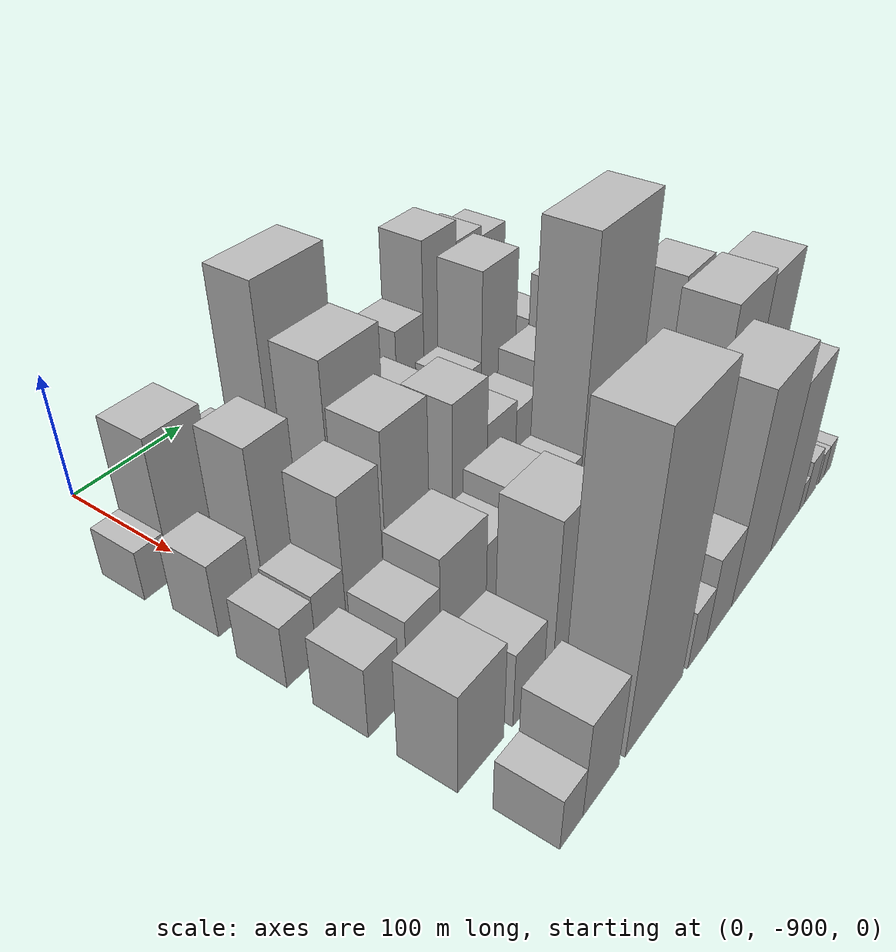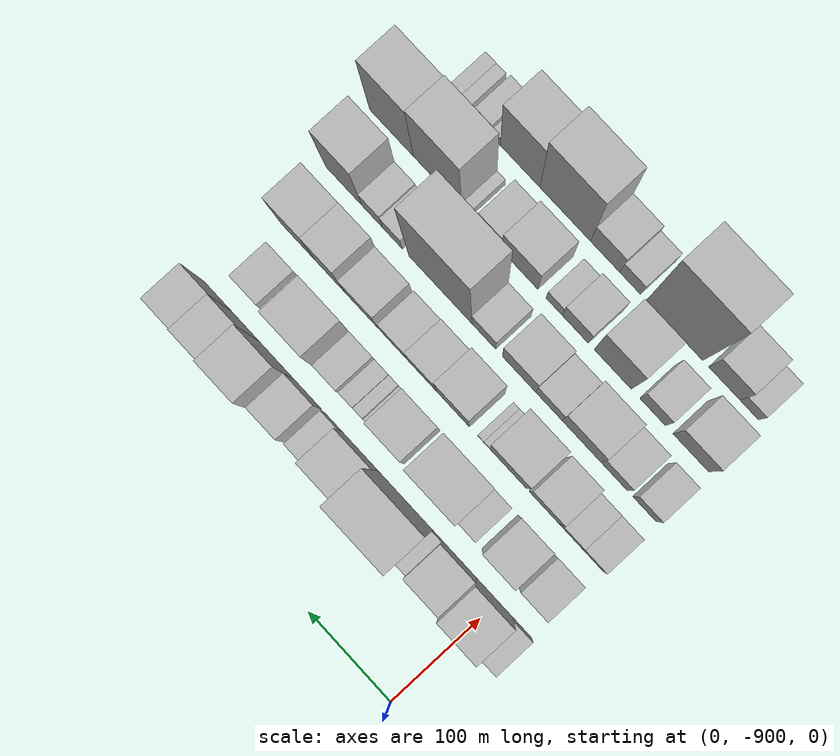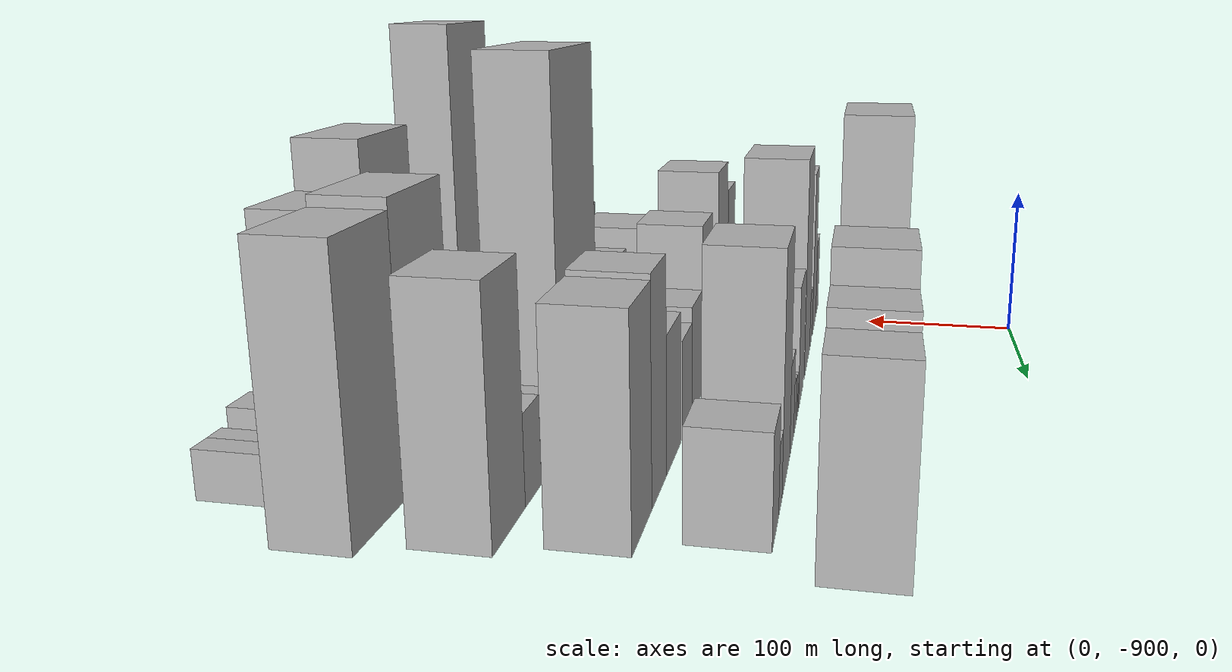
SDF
<sdf version="1.6">
 <world name="default">
  <model name="building_1">
   <static>1</static>
   <pose>100.0000 -928.6633 0 0.000000 0.000000 0.000000</pose>
   <link name="link">
    <pose>0 0 19.50 0 0 0</pose>
    <collision name="collision"><geometry><box><size>40.0000 22.6733 39.0000</size></box></geometry></collision>
    <visual name="visual">
     <cast_shadows>0</cast_shadows>
     <geometry><box><size>40.0000 22.6733 39.0000</size></box></geometry>
     <material>
      <script>
       <uri>model://HANNAS_wall/materials/scripts</uri>
       <uri>model://HANNAS_wall/materials/textures</uri>
       <name>vrc/HANNAS_wall</name>
      </script>
     </material>
    </visual>
   </link>
  </model>
  <model name="building_2">
   <static>1</static>
   <pose>100.0000 -895.1582 0 0.000000 0.000000 0.000000</pose>
   <link name="link">
    <pose>0 0 55.50 0 0 0</pose>
    <collision name="collision"><geometry><box><size>40.0000 44.3370 111.0000</size></box></geometry></collision>
    <visual name="visual">
     <cast_shadows>0</cast_shadows>
     <geometry><box><size>40.0000 44.3370 111.0000</size></box></geometry>
     <material>
      <script>
       <uri>model://HANNAS_wall/materials/scripts</uri>
       <uri>model://HANNAS_wall/materials/textures</uri>
       <name>vrc/HANNAS_wall</name>
      </script>
     </material>
    </visual>
   </link>
  </model>
  <model name="building_3">
   <static>1</static>
   <pose>100.0000 -852.6867 0 0.000000 0.000000 0.000000</pose>
   <link name="link">
    <pose>0 0 34.50 0 0 0</pose>
    <collision name="collision"><geometry><box><size>40.0000 40.6060 69.0000</size></box></geometry></collision>
    <visual name="visual">
     <cast_shadows>0</cast_shadows>
     <geometry><box><size>40.0000 40.6060 69.0000</size></box></geometry>
     <material>
      <script>
       <uri>model://HANNAS_wall/materials/scripts</uri>
       <uri>model://HANNAS_wall/materials/textures</uri>
       <name>vrc/HANNAS_wall</name>
      </script>
     </material>
    </visual>
   </link>
  </model>
  <model name="building_4">
   <static>1</static>
   <pose>100.0000 -826.3222 0 0.000000 0.000000 0.000000</pose>
   <link name="link">
    <pose>0 0 13.50 0 0 0</pose>
    <collision name="collision"><geometry><box><size>40.0000 12.1230 27.0000</size></box></geometry></collision>
    <visual name="visual">
     <cast_shadows>0</cast_shadows>
     <geometry><box><size>40.0000 12.1230 27.0000</size></box></geometry>
     <material>
      <script>
       <uri>model://HANNAS_wall/materials/scripts</uri>
       <uri>model://HANNAS_wall/materials/textures</uri>
       <name>vrc/HANNAS_wall</name>
      </script>
     </material>
    </visual>
   </link>
  </model>
  <model name="building_5">
   <static>1</static>
   <pose>100.0000 -786.8183 0 0.000000 0.000000 0.000000</pose>
   <link name="link">
    <pose>0 0 85.50 0 0 0</pose>
    <collision name="collision"><geometry><box><size>40.0000 66.8846 171.0000</size></box></geometry></collision>
    <visual name="visual">
     <cast_shadows>0</cast_shadows>
     <geometry><box><size>40.0000 66.8846 171.0000</size></box></geometry>
     <material>
      <script>
       <uri>model://HANNAS_wall/materials/scripts</uri>
       <uri>model://HANNAS_wall/materials/textures</uri>
       <name>vrc/HANNAS_wall</name>
      </script>
     </material>
    </visual>
   </link>
  </model>
  <model name="building_6">
   <static>1</static>
   <pose>100.0000 -731.4493 0 0.000000 0.000000 0.000000</pose>
   <link name="link">
    <pose>0 0 37.50 0 0 0</pose>
    <collision name="collision"><geometry><box><size>40.0000 43.8536 75.0000</size></box></geometry></collision>
    <visual name="visual">
     <cast_shadows>0</cast_shadows>
     <geometry><box><size>40.0000 43.8536 75.0000</size></box></geometry>
     <material>
      <script>
       <uri>model://HANNAS_wall/materials/scripts</uri>
       <uri>model://HANNAS_wall/materials/textures</uri>
       <name>vrc/HANNAS_wall</name>
      </script>
     </material>
    </visual>
   </link>
  </model>
  <model name="building_7">
   <static>1</static>
   <pose>100.0000 -698.7344 0 0.000000 0.000000 0.000000</pose>
   <link name="link">
    <pose>0 0 18.00 0 0 0</pose>
    <collision name="collision"><geometry><box><size>40.0000 21.5762 36.0000</size></box></geometry></collision>
    <visual name="visual">
     <cast_shadows>0</cast_shadows>
     <geometry><box><size>40.0000 21.5762 36.0000</size></box></geometry>
     <material>
      <script>
       <uri>model://HANNAS_wall/materials/scripts</uri>
       <uri>model://HANNAS_wall/materials/textures</uri>
       <name>vrc/HANNAS_wall</name>
      </script>
     </material>
    </visual>
   </link>
  </model>
  <model name="building_8">
   <static>1</static>
   <pose>100.0000 -667.6218 0 0.000000 0.000000 0.000000</pose>
   <link name="link">
    <pose>0 0 34.50 0 0 0</pose>
    <collision name="collision"><geometry><box><size>40.0000 34.6488 69.0000</size></box></geometry></collision>
    <visual name="visual">
     <cast_shadows>0</cast_shadows>
     <geometry><box><size>40.0000 34.6488 69.0000</size></box></geometry>
     <material>
      <script>
       <uri>model://HANNAS_wall/materials/scripts</uri>
       <uri>model://HANNAS_wall/materials/textures</uri>
       <name>vrc/HANNAS_wall</name>
      </script>
     </material>
    </visual>
   </link>
  </model>
  <model name="building_9">
   <static>1</static>
   <pose>100.0000 -628.5737 0 0.000000 0.000000 0.000000</pose>
   <link name="link">
    <pose>0 0 64.50 0 0 0</pose>
    <collision name="collision"><geometry><box><size>40.0000 43.4475 129.0000</size></box></geometry></collision>
    <visual name="visual">
     <cast_shadows>0</cast_shadows>
     <geometry><box><size>40.0000 43.4475 129.0000</size></box></geometry>
     <material>
      <script>
       <uri>model://HANNAS_wall/materials/scripts</uri>
       <uri>model://HANNAS_wall/materials/textures</uri>
       <name>vrc/HANNAS_wall</name>
      </script>
     </material>
    </visual>
   </link>
  </model>
  <model name="building_10">
   <static>1</static>
   <pose>100.0000 -589.6463 0 0.000000 0.000000 0.000000</pose>
   <link name="link">
    <pose>0 0 55.50 0 0 0</pose>
    <collision name="collision"><geometry><box><size>40.0000 34.4072 111.0000</size></box></geometry></collision>
    <visual name="visual">
     <cast_shadows>0</cast_shadows>
     <geometry><box><size>40.0000 34.4072 111.0000</size></box></geometry>
     <material>
      <script>
       <uri>model://HANNAS_wall/materials/scripts</uri>
       <uri>model://HANNAS_wall/materials/textures</uri>
       <name>vrc/HANNAS_wall</name>
      </script>
     </material>
    </visual>
   </link>
  </model>
  <model name="building_11">
   <static>1</static>
   <pose>100.0000 -555.4277 0 0.000000 0.000000 0.000000</pose>
   <link name="link">
    <pose>0 0 51.00 0 0 0</pose>
    <collision name="collision"><geometry><box><size>40.0000 34.0300 102.0000</size></box></geometry></collision>
    <visual name="visual">
     <cast_shadows>0</cast_shadows>
     <geometry><box><size>40.0000 34.0300 102.0000</size></box></geometry>
     <material>
      <script>
       <uri>model://HANNAS_wall/materials/scripts</uri>
       <uri>model://HANNAS_wall/materials/textures</uri>
       <name>vrc/HANNAS_wall</name>
      </script>
     </material>
    </visual>
   </link>
  </model>
  <model name="building_56">
   <static>1</static>
   <pose>160.0000 -919.1552 0 0.000000 0.000000 0.000000</pose>
   <link name="link">
    <pose>0 0 28.50 0 0 0</pose>
    <collision name="collision"><geometry><box><size>40.0000 31.6895 57.0000</size></box></geometry></collision>
    <visual name="visual">
     <cast_shadows>0</cast_shadows>
     <geometry><box><size>40.0000 31.6895 57.0000</size></box></geometry>
     <material>
      <script>
       <uri>model://HANNAS_wall/materials/scripts</uri>
       <uri>model://HANNAS_wall/materials/textures</uri>
       <name>vrc/HANNAS_wall</name>
      </script>
     </material>
    </visual>
   </link>
  </model>
  <model name="building_57">
   <static>1</static>
   <pose>160.0000 -877.0877 0 0.000000 0.000000 0.000000</pose>
   <link name="link">
    <pose>0 0 58.50 0 0 0</pose>
    <collision name="collision"><geometry><box><size>40.0000 36.4456 117.0000</size></box></geometry></collision>
    <visual name="visual">
     <cast_shadows>0</cast_shadows>
     <geometry><box><size>40.0000 36.4456 117.0000</size></box></geometry>
     <material>
      <script>
       <uri>model://HANNAS_wall/materials/scripts</uri>
       <uri>model://HANNAS_wall/materials/textures</uri>
       <name>vrc/HANNAS_wall</name>
      </script>
     </material>
    </visual>
   </link>
  </model>
  <model name="building_58">
   <static>1</static>
   <pose>160.0000 -840.0924 0 0.000000 0.000000 0.000000</pose>
   <link name="link">
    <pose>0 0 19.50 0 0 0</pose>
    <collision name="collision"><geometry><box><size>40.0000 21.5450 39.0000</size></box></geometry></collision>
    <visual name="visual">
     <cast_shadows>0</cast_shadows>
     <geometry><box><size>40.0000 21.5450 39.0000</size></box></geometry>
     <material>
      <script>
       <uri>model://HANNAS_wall/materials/scripts</uri>
       <uri>model://HANNAS_wall/materials/textures</uri>
       <name>vrc/HANNAS_wall</name>
      </script>
     </material>
    </visual>
   </link>
  </model>
  <model name="building_59">
   <static>1</static>
   <pose>160.0000 -801.3334 0 0.000000 0.000000 0.000000</pose>
   <link name="link">
    <pose>0 0 70.50 0 0 0</pose>
    <collision name="collision"><geometry><box><size>40.0000 55.9730 141.0000</size></box></geometry></collision>
    <visual name="visual">
     <cast_shadows>0</cast_shadows>
     <geometry><box><size>40.0000 55.9730 141.0000</size></box></geometry>
     <material>
      <script>
       <uri>model://HANNAS_wall/materials/scripts</uri>
       <uri>model://HANNAS_wall/materials/textures</uri>
       <name>vrc/HANNAS_wall</name>
      </script>
     </material>
    </visual>
   </link>
  </model>
  <model name="building_60">
   <static>1</static>
   <pose>160.0000 -743.4794 0 0.000000 0.000000 0.000000</pose>
   <link name="link">
    <pose>0 0 37.50 0 0 0</pose>
    <collision name="collision"><geometry><box><size>40.0000 41.7349 75.0000</size></box></geometry></collision>
    <visual name="visual">
     <cast_shadows>0</cast_shadows>
     <geometry><box><size>40.0000 41.7349 75.0000</size></box></geometry>
     <material>
      <script>
       <uri>model://HANNAS_wall/materials/scripts</uri>
       <uri>model://HANNAS_wall/materials/textures</uri>
       <name>vrc/HANNAS_wall</name>
      </script>
     </material>
    </visual>
   </link>
  </model>
  <model name="building_61">
   <static>1</static>
   <pose>160.0000 -718.9502 0 0.000000 0.000000 0.000000</pose>
   <link name="link">
    <pose>0 0 9.00 0 0 0</pose>
    <collision name="collision"><geometry><box><size>40.0000 7.3236 18.0000</size></box></geometry></collision>
    <visual name="visual">
     <cast_shadows>0</cast_shadows>
     <geometry><box><size>40.0000 7.3236 18.0000</size></box></geometry>
     <material>
      <script>
       <uri>model://HANNAS_wall/materials/scripts</uri>
       <uri>model://HANNAS_wall/materials/textures</uri>
       <name>vrc/HANNAS_wall</name>
      </script>
     </material>
    </visual>
   </link>
  </model>
  <model name="building_62">
   <static>1</static>
   <pose>160.0000 -709.4369 0 0.000000 0.000000 0.000000</pose>
   <link name="link">
    <pose>0 0 13.50 0 0 0</pose>
    <collision name="collision"><geometry><box><size>40.0000 11.7029 27.0000</size></box></geometry></collision>
    <visual name="visual">
     <cast_shadows>0</cast_shadows>
     <geometry><box><size>40.0000 11.7029 27.0000</size></box></geometry>
     <material>
      <script>
       <uri>model://HANNAS_wall/materials/scripts</uri>
       <uri>model://HANNAS_wall/materials/textures</uri>
       <name>vrc/HANNAS_wall</name>
      </script>
     </material>
    </visual>
   </link>
  </model>
  <model name="building_63">
   <static>1</static>
   <pose>160.0000 -695.0232 0 0.000000 0.000000 0.000000</pose>
   <link name="link">
    <pose>0 0 15.00 0 0 0</pose>
    <collision name="collision"><geometry><box><size>40.0000 17.1245 30.0000</size></box></geometry></collision>
    <visual name="visual">
     <cast_shadows>0</cast_shadows>
     <geometry><box><size>40.0000 17.1245 30.0000</size></box></geometry>
     <material>
      <script>
       <uri>model://HANNAS_wall/materials/scripts</uri>
       <uri>model://HANNAS_wall/materials/textures</uri>
       <name>vrc/HANNAS_wall</name>
      </script>
     </material>
    </visual>
   </link>
  </model>
  <model name="building_64">
   <static>1</static>
   <pose>160.0000 -672.4857 0 0.000000 0.000000 0.000000</pose>
   <link name="link">
    <pose>0 0 25.50 0 0 0</pose>
    <collision name="collision"><geometry><box><size>40.0000 27.9505 51.0000</size></box></geometry></collision>
    <visual name="visual">
     <cast_shadows>0</cast_shadows>
     <geometry><box><size>40.0000 27.9505 51.0000</size></box></geometry>
     <material>
      <script>
       <uri>model://HANNAS_wall/materials/scripts</uri>
       <uri>model://HANNAS_wall/materials/textures</uri>
       <name>vrc/HANNAS_wall</name>
      </script>
     </material>
    </visual>
   </link>
  </model>
  <model name="building_65">
   <static>1</static>
   <pose>160.0000 -635.2087 0 0.000000 0.000000 0.000000</pose>
   <link name="link">
    <pose>0 0 63.00 0 0 0</pose>
    <collision name="collision"><geometry><box><size>40.0000 46.6035 126.0000</size></box></geometry></collision>
    <visual name="visual">
     <cast_shadows>0</cast_shadows>
     <geometry><box><size>40.0000 46.6035 126.0000</size></box></geometry>
     <material>
      <script>
       <uri>model://HANNAS_wall/materials/scripts</uri>
       <uri>model://HANNAS_wall/materials/textures</uri>
       <name>vrc/HANNAS_wall</name>
      </script>
     </material>
    </visual>
   </link>
  </model>
  <model name="building_66">
   <static>1</static>
   <pose>160.0000 -602.7980 0 0.000000 0.000000 0.000000</pose>
   <link name="link">
    <pose>0 0 18.00 0 0 0</pose>
    <collision name="collision"><geometry><box><size>40.0000 18.2181 36.0000</size></box></geometry></collision>
    <visual name="visual">
     <cast_shadows>0</cast_shadows>
     <geometry><box><size>40.0000 18.2181 36.0000</size></box></geometry>
     <material>
      <script>
       <uri>model://HANNAS_wall/materials/scripts</uri>
       <uri>model://HANNAS_wall/materials/textures</uri>
       <name>vrc/HANNAS_wall</name>
      </script>
     </material>
    </visual>
   </link>
  </model>
  <model name="building_67">
   <static>1</static>
   <pose>160.0000 -577.5004 0 0.000000 0.000000 0.000000</pose>
   <link name="link">
    <pose>0 0 28.50 0 0 0</pose>
    <collision name="collision"><geometry><box><size>40.0000 32.3771 57.0000</size></box></geometry></collision>
    <visual name="visual">
     <cast_shadows>0</cast_shadows>
     <geometry><box><size>40.0000 32.3771 57.0000</size></box></geometry>
     <material>
      <script>
       <uri>model://HANNAS_wall/materials/scripts</uri>
       <uri>model://HANNAS_wall/materials/textures</uri>
       <name>vrc/HANNAS_wall</name>
      </script>
     </material>
    </visual>
   </link>
  </model>
  <model name="building_113">
   <static>1</static>
   <pose>220.0000 -926.9657 0 0.000000 0.000000 0.000000</pose>
   <link name="link">
    <pose>0 0 24.00 0 0 0</pose>
    <collision name="collision"><geometry><box><size>40.0000 26.0686 48.0000</size></box></geometry></collision>
    <visual name="visual">
     <cast_shadows>0</cast_shadows>
     <geometry><box><size>40.0000 26.0686 48.0000</size></box></geometry>
     <material>
      <script>
       <uri>model://HANNAS_wall/materials/scripts</uri>
       <uri>model://HANNAS_wall/materials/textures</uri>
       <name>vrc/HANNAS_wall</name>
      </script>
     </material>
    </visual>
   </link>
  </model>
  <model name="building_114">
   <static>1</static>
   <pose>220.0000 -900.2919 0 0.000000 0.000000 0.000000</pose>
   <link name="link">
    <pose>0 0 25.50 0 0 0</pose>
    <collision name="collision"><geometry><box><size>40.0000 27.2789 51.0000</size></box></geometry></collision>
    <visual name="visual">
     <cast_shadows>0</cast_shadows>
     <geometry><box><size>40.0000 27.2789 51.0000</size></box></geometry>
     <material>
      <script>
       <uri>model://HANNAS_wall/materials/scripts</uri>
       <uri>model://HANNAS_wall/materials/textures</uri>
       <name>vrc/HANNAS_wall</name>
      </script>
     </material>
    </visual>
   </link>
  </model>
  <model name="building_115">
   <static>1</static>
   <pose>220.0000 -868.7130 0 0.000000 0.000000 0.000000</pose>
   <link name="link">
    <pose>0 0 52.50 0 0 0</pose>
    <collision name="collision"><geometry><box><size>40.0000 35.8790 105.0000</size></box></geometry></collision>
    <visual name="visual">
     <cast_shadows>0</cast_shadows>
     <geometry><box><size>40.0000 35.8790 105.0000</size></box></geometry>
     <material>
      <script>
       <uri>model://HANNAS_wall/materials/scripts</uri>
       <uri>model://HANNAS_wall/materials/textures</uri>
       <name>vrc/HANNAS_wall</name>
      </script>
     </material>
    </visual>
   </link>
  </model>
  <model name="building_116">
   <static>1</static>
   <pose>220.0000 -825.6072 0 0.000000 0.000000 0.000000</pose>
   <link name="link">
    <pose>0 0 63.00 0 0 0</pose>
    <collision name="collision"><geometry><box><size>40.0000 44.3325 126.0000</size></box></geometry></collision>
    <visual name="visual">
     <cast_shadows>0</cast_shadows>
     <geometry><box><size>40.0000 44.3325 126.0000</size></box></geometry>
     <material>
      <script>
       <uri>model://HANNAS_wall/materials/scripts</uri>
       <uri>model://HANNAS_wall/materials/textures</uri>
       <name>vrc/HANNAS_wall</name>
      </script>
     </material>
    </visual>
   </link>
  </model>
  <model name="building_117">
   <static>1</static>
   <pose>220.0000 -799.6809 0 0.000000 0.000000 0.000000</pose>
   <link name="link">
    <pose>0 0 9.00 0 0 0</pose>
    <collision name="collision"><geometry><box><size>40.0000 7.5201 18.0000</size></box></geometry></collision>
    <visual name="visual">
     <cast_shadows>0</cast_shadows>
     <geometry><box><size>40.0000 7.5201 18.0000</size></box></geometry>
     <material>
      <script>
       <uri>model://HANNAS_wall/materials/scripts</uri>
       <uri>model://HANNAS_wall/materials/textures</uri>
       <name>vrc/HANNAS_wall</name>
      </script>
     </material>
    </visual>
   </link>
  </model>
  <model name="building_118">
   <static>1</static>
   <pose>220.0000 -792.2036 0 0.000000 0.000000 0.000000</pose>
   <link name="link">
    <pose>0 0 7.50 0 0 0</pose>
    <collision name="collision"><geometry><box><size>40.0000 7.4347 15.0000</size></box></geometry></collision>
    <visual name="visual">
     <cast_shadows>0</cast_shadows>
     <geometry><box><size>40.0000 7.4347 15.0000</size></box></geometry>
     <material>
      <script>
       <uri>model://HANNAS_wall/materials/scripts</uri>
       <uri>model://HANNAS_wall/materials/textures</uri>
       <name>vrc/HANNAS_wall</name>
      </script>
     </material>
    </visual>
   </link>
  </model>
  <model name="building_119">
   <static>1</static>
   <pose>220.0000 -758.5660 0 0.000000 0.000000 0.000000</pose>
   <link name="link">
    <pose>0 0 52.50 0 0 0</pose>
    <collision name="collision"><geometry><box><size>40.0000 39.8404 105.0000</size></box></geometry></collision>
    <visual name="visual">
     <cast_shadows>0</cast_shadows>
     <geometry><box><size>40.0000 39.8404 105.0000</size></box></geometry>
     <material>
      <script>
       <uri>model://HANNAS_wall/materials/scripts</uri>
       <uri>model://HANNAS_wall/materials/textures</uri>
       <name>vrc/HANNAS_wall</name>
      </script>
     </material>
    </visual>
   </link>
  </model>
  <model name="building_120">
   <static>1</static>
   <pose>220.0000 -720.6980 0 0.000000 0.000000 0.000000</pose>
   <link name="link">
    <pose>0 0 33.00 0 0 0</pose>
    <collision name="collision"><geometry><box><size>40.0000 35.8957 66.0000</size></box></geometry></collision>
    <visual name="visual">
     <cast_shadows>0</cast_shadows>
     <geometry><box><size>40.0000 35.8957 66.0000</size></box></geometry>
     <material>
      <script>
       <uri>model://HANNAS_wall/materials/scripts</uri>
       <uri>model://HANNAS_wall/materials/textures</uri>
       <name>vrc/HANNAS_wall</name>
      </script>
     </material>
    </visual>
   </link>
  </model>
  <model name="building_121">
   <static>1</static>
   <pose>220.0000 -686.6123 0 0.000000 0.000000 0.000000</pose>
   <link name="link">
    <pose>0 0 28.50 0 0 0</pose>
    <collision name="collision"><geometry><box><size>40.0000 32.2755 57.0000</size></box></geometry></collision>
    <visual name="visual">
     <cast_shadows>0</cast_shadows>
     <geometry><box><size>40.0000 32.2755 57.0000</size></box></geometry>
     <material>
      <script>
       <uri>model://HANNAS_wall/materials/scripts</uri>
       <uri>model://HANNAS_wall/materials/textures</uri>
       <name>vrc/HANNAS_wall</name>
      </script>
     </material>
    </visual>
   </link>
  </model>
  <model name="building_122">
   <static>1</static>
   <pose>220.0000 -646.3371 0 0.000000 0.000000 0.000000</pose>
   <link name="link">
    <pose>0 0 37.50 0 0 0</pose>
    <collision name="collision"><geometry><box><size>40.0000 40.2749 75.0000</size></box></geometry></collision>
    <visual name="visual">
     <cast_shadows>0</cast_shadows>
     <geometry><box><size>40.0000 40.2749 75.0000</size></box></geometry>
     <material>
      <script>
       <uri>model://HANNAS_wall/materials/scripts</uri>
       <uri>model://HANNAS_wall/materials/textures</uri>
       <name>vrc/HANNAS_wall</name>
      </script>
     </material>
    </visual>
   </link>
  </model>
  <model name="building_123">
   <static>1</static>
   <pose>220.0000 -607.9706 0 0.000000 0.000000 0.000000</pose>
   <link name="link">
    <pose>0 0 58.50 0 0 0</pose>
    <collision name="collision"><geometry><box><size>40.0000 36.4581 117.0000</size></box></geometry></collision>
    <visual name="visual">
     <cast_shadows>0</cast_shadows>
     <geometry><box><size>40.0000 36.4581 117.0000</size></box></geometry>
     <material>
      <script>
       <uri>model://HANNAS_wall/materials/scripts</uri>
       <uri>model://HANNAS_wall/materials/textures</uri>
       <name>vrc/HANNAS_wall</name>
      </script>
     </material>
    </visual>
   </link>
  </model>
  <model name="building_124">
   <static>1</static>
   <pose>220.0000 -568.2606 0 0.000000 0.000000 0.000000</pose>
   <link name="link">
    <pose>0 0 57.00 0 0 0</pose>
    <collision name="collision"><geometry><box><size>40.0000 42.9619 114.0000</size></box></geometry></collision>
    <visual name="visual">
     <cast_shadows>0</cast_shadows>
     <geometry><box><size>40.0000 42.9619 114.0000</size></box></geometry>
     <material>
      <script>
       <uri>model://HANNAS_wall/materials/scripts</uri>
       <uri>model://HANNAS_wall/materials/textures</uri>
       <name>vrc/HANNAS_wall</name>
      </script>
     </material>
    </visual>
   </link>
  </model>
  <model name="building_172">
   <static>1</static>
   <pose>280.0000 -926.1013 0 0.000000 0.000000 0.000000</pose>
   <link name="link">
    <pose>0 0 27.00 0 0 0</pose>
    <collision name="collision"><geometry><box><size>40.0000 27.7974 54.0000</size></box></geometry></collision>
    <visual name="visual">
     <cast_shadows>0</cast_shadows>
     <geometry><box><size>40.0000 27.7974 54.0000</size></box></geometry>
     <material>
      <script>
       <uri>model://HANNAS_wall/materials/scripts</uri>
       <uri>model://HANNAS_wall/materials/textures</uri>
       <name>vrc/HANNAS_wall</name>
      </script>
     </material>
    </visual>
   </link>
  </model>
  <model name="building_173">
   <static>1</static>
   <pose>280.0000 -889.1991 0 0.000000 0.000000 0.000000</pose>
   <link name="link">
    <pose>0 0 30.00 0 0 0</pose>
    <collision name="collision"><geometry><box><size>40.0000 32.0070 60.0000</size></box></geometry></collision>
    <visual name="visual">
     <cast_shadows>0</cast_shadows>
     <geometry><box><size>40.0000 32.0070 60.0000</size></box></geometry>
     <material>
      <script>
       <uri>model://HANNAS_wall/materials/scripts</uri>
       <uri>model://HANNAS_wall/materials/textures</uri>
       <name>vrc/HANNAS_wall</name>
      </script>
     </material>
    </visual>
   </link>
  </model>
  <model name="building_174">
   <static>1</static>
   <pose>280.0000 -849.8943 0 0.000000 0.000000 0.000000</pose>
   <link name="link">
    <pose>0 0 40.50 0 0 0</pose>
    <collision name="collision"><geometry><box><size>40.0000 46.6026 81.0000</size></box></geometry></collision>
    <visual name="visual">
     <cast_shadows>0</cast_shadows>
     <geometry><box><size>40.0000 46.6026 81.0000</size></box></geometry>
     <material>
      <script>
       <uri>model://HANNAS_wall/materials/scripts</uri>
       <uri>model://HANNAS_wall/materials/textures</uri>
       <name>vrc/HANNAS_wall</name>
      </script>
     </material>
    </visual>
   </link>
  </model>
  <model name="building_175">
   <static>1</static>
   <pose>280.0000 -810.5837 0 0.000000 0.000000 0.000000</pose>
   <link name="link">
    <pose>0 0 28.50 0 0 0</pose>
    <collision name="collision"><geometry><box><size>40.0000 32.0185 57.0000</size></box></geometry></collision>
    <visual name="visual">
     <cast_shadows>0</cast_shadows>
     <geometry><box><size>40.0000 32.0185 57.0000</size></box></geometry>
     <material>
      <script>
       <uri>model://HANNAS_wall/materials/scripts</uri>
       <uri>model://HANNAS_wall/materials/textures</uri>
       <name>vrc/HANNAS_wall</name>
      </script>
     </material>
    </visual>
   </link>
  </model>
  <model name="building_176">
   <static>1</static>
   <pose>280.0000 -774.1640 0 0.000000 0.000000 0.000000</pose>
   <link name="link">
    <pose>0 0 37.50 0 0 0</pose>
    <collision name="collision"><geometry><box><size>40.0000 40.8207 75.0000</size></box></geometry></collision>
    <visual name="visual">
     <cast_shadows>0</cast_shadows>
     <geometry><box><size>40.0000 40.8207 75.0000</size></box></geometry>
     <material>
      <script>
       <uri>model://HANNAS_wall/materials/scripts</uri>
       <uri>model://HANNAS_wall/materials/textures</uri>
       <name>vrc/HANNAS_wall</name>
      </script>
     </material>
    </visual>
   </link>
  </model>
  <model name="building_177">
   <static>1</static>
   <pose>280.0000 -731.1877 0 0.000000 0.000000 0.000000</pose>
   <link name="link">
    <pose>0 0 27.00 0 0 0</pose>
    <collision name="collision"><geometry><box><size>40.0000 29.1320 54.0000</size></box></geometry></collision>
    <visual name="visual">
     <cast_shadows>0</cast_shadows>
     <geometry><box><size>40.0000 29.1320 54.0000</size></box></geometry>
     <material>
      <script>
       <uri>model://HANNAS_wall/materials/scripts</uri>
       <uri>model://HANNAS_wall/materials/textures</uri>
       <name>vrc/HANNAS_wall</name>
      </script>
     </material>
    </visual>
   </link>
  </model>
  <model name="building_178">
   <static>1</static>
   <pose>280.0000 -677.9026 0 0.000000 0.000000 0.000000</pose>
   <link name="link">
    <pose>0 0 106.50 0 0 0</pose>
    <collision name="collision"><geometry><box><size>40.0000 77.4381 213.0000</size></box></geometry></collision>
    <visual name="visual">
     <cast_shadows>0</cast_shadows>
     <geometry><box><size>40.0000 77.4381 213.0000</size></box></geometry>
     <material>
      <script>
       <uri>model://HANNAS_wall/materials/scripts</uri>
       <uri>model://HANNAS_wall/materials/textures</uri>
       <name>vrc/HANNAS_wall</name>
      </script>
     </material>
    </visual>
   </link>
  </model>
  <model name="building_179">
   <static>1</static>
   <pose>280.0000 -618.6739 0 0.000000 0.000000 0.000000</pose>
   <link name="link">
    <pose>0 0 21.00 0 0 0</pose>
    <collision name="collision"><geometry><box><size>40.0000 25.0192 42.0000</size></box></geometry></collision>
    <visual name="visual">
     <cast_shadows>0</cast_shadows>
     <geometry><box><size>40.0000 25.0192 42.0000</size></box></geometry>
     <material>
      <script>
       <uri>model://HANNAS_wall/materials/scripts</uri>
       <uri>model://HANNAS_wall/materials/textures</uri>
       <name>vrc/HANNAS_wall</name>
      </script>
     </material>
    </visual>
   </link>
  </model>
  <model name="building_180">
   <static>1</static>
   <pose>280.0000 -593.6778 0 0.000000 0.000000 0.000000</pose>
   <link name="link">
    <pose>0 0 24.00 0 0 0</pose>
    <collision name="collision"><geometry><box><size>40.0000 24.9732 48.0000</size></box></geometry></collision>
    <visual name="visual">
     <cast_shadows>0</cast_shadows>
     <geometry><box><size>40.0000 24.9732 48.0000</size></box></geometry>
     <material>
      <script>
       <uri>model://HANNAS_wall/materials/scripts</uri>
       <uri>model://HANNAS_wall/materials/textures</uri>
       <name>vrc/HANNAS_wall</name>
      </script>
     </material>
    </visual>
   </link>
  </model>
  <model name="building_181">
   <static>1</static>
   <pose>280.0000 -558.6664 0 0.000000 0.000000 0.000000</pose>
   <link name="link">
    <pose>0 0 63.00 0 0 0</pose>
    <collision name="collision"><geometry><box><size>40.0000 45.0495 126.0000</size></box></geometry></collision>
    <visual name="visual">
     <cast_shadows>0</cast_shadows>
     <geometry><box><size>40.0000 45.0495 126.0000</size></box></geometry>
     <material>
      <script>
       <uri>model://HANNAS_wall/materials/scripts</uri>
       <uri>model://HANNAS_wall/materials/textures</uri>
       <name>vrc/HANNAS_wall</name>
      </script>
     </material>
    </visual>
   </link>
  </model>
  <model name="building_223">
   <static>1</static>
   <pose>340.0000 -918.4983 0 0.000000 0.000000 0.000000</pose>
   <link name="link">
    <pose>0 0 37.50 0 0 0</pose>
    <collision name="collision"><geometry><box><size>40.0000 43.0033 75.0000</size></box></geometry></collision>
    <visual name="visual">
     <cast_shadows>0</cast_shadows>
     <geometry><box><size>40.0000 43.0033 75.0000</size></box></geometry>
     <material>
      <script>
       <uri>model://HANNAS_wall/materials/scripts</uri>
       <uri>model://HANNAS_wall/materials/textures</uri>
       <name>vrc/HANNAS_wall</name>
      </script>
     </material>
    </visual>
   </link>
  </model>
  <model name="building_224">
   <static>1</static>
   <pose>340.0000 -872.4000 0 0.000000 0.000000 0.000000</pose>
   <link name="link">
    <pose>0 0 28.50 0 0 0</pose>
    <collision name="collision"><geometry><box><size>40.0000 31.1934 57.0000</size></box></geometry></collision>
    <visual name="visual">
     <cast_shadows>0</cast_shadows>
     <geometry><box><size>40.0000 31.1934 57.0000</size></box></geometry>
     <material>
      <script>
       <uri>model://HANNAS_wall/materials/scripts</uri>
       <uri>model://HANNAS_wall/materials/textures</uri>
       <name>vrc/HANNAS_wall</name>
      </script>
     </material>
    </visual>
   </link>
  </model>
  <model name="building_225">
   <static>1</static>
   <pose>340.0000 -824.1453 0 0.000000 0.000000 0.000000</pose>
   <link name="link">
    <pose>0 0 60.00 0 0 0</pose>
    <collision name="collision"><geometry><box><size>40.0000 45.3159 120.0000</size></box></geometry></collision>
    <visual name="visual">
     <cast_shadows>0</cast_shadows>
     <geometry><box><size>40.0000 45.3159 120.0000</size></box></geometry>
     <material>
      <script>
       <uri>model://HANNAS_wall/materials/scripts</uri>
       <uri>model://HANNAS_wall/materials/textures</uri>
       <name>vrc/HANNAS_wall</name>
      </script>
     </material>
    </visual>
   </link>
  </model>
  <model name="building_226">
   <static>1</static>
   <pose>340.0000 -778.5512 0 0.000000 0.000000 0.000000</pose>
   <link name="link">
    <pose>0 0 28.50 0 0 0</pose>
    <collision name="collision"><geometry><box><size>40.0000 31.8724 57.0000</size></box></geometry></collision>
    <visual name="visual">
     <cast_shadows>0</cast_shadows>
     <geometry><box><size>40.0000 31.8724 57.0000</size></box></geometry>
     <material>
      <script>
       <uri>model://HANNAS_wall/materials/scripts</uri>
       <uri>model://HANNAS_wall/materials/textures</uri>
       <name>vrc/HANNAS_wall</name>
      </script>
     </material>
    </visual>
   </link>
  </model>
  <model name="building_227">
   <static>1</static>
   <pose>340.0000 -752.7260 0 0.000000 0.000000 0.000000</pose>
   <link name="link">
    <pose>0 0 19.50 0 0 0</pose>
    <collision name="collision"><geometry><box><size>40.0000 19.7779 39.0000</size></box></geometry></collision>
    <visual name="visual">
     <cast_shadows>0</cast_shadows>
     <geometry><box><size>40.0000 19.7779 39.0000</size></box></geometry>
     <material>
      <script>
       <uri>model://HANNAS_wall/materials/scripts</uri>
       <uri>model://HANNAS_wall/materials/textures</uri>
       <name>vrc/HANNAS_wall</name>
      </script>
     </material>
    </visual>
   </link>
  </model>
  <model name="building_228">
   <static>1</static>
   <pose>340.0000 -710.6813 0 0.000000 0.000000 0.000000</pose>
   <link name="link">
    <pose>0 0 39.00 0 0 0</pose>
    <collision name="collision"><geometry><box><size>40.0000 44.3116 78.0000</size></box></geometry></collision>
    <visual name="visual">
     <cast_shadows>0</cast_shadows>
     <geometry><box><size>40.0000 44.3116 78.0000</size></box></geometry>
     <material>
      <script>
       <uri>model://HANNAS_wall/materials/scripts</uri>
       <uri>model://HANNAS_wall/materials/textures</uri>
       <name>vrc/HANNAS_wall</name>
      </script>
     </material>
    </visual>
   </link>
  </model>
  <model name="building_229">
   <static>1</static>
   <pose>340.0000 -674.0462 0 0.000000 0.000000 0.000000</pose>
   <link name="link">
    <pose>0 0 28.50 0 0 0</pose>
    <collision name="collision"><geometry><box><size>40.0000 28.9584 57.0000</size></box></geometry></collision>
    <visual name="visual">
     <cast_shadows>0</cast_shadows>
     <geometry><box><size>40.0000 28.9584 57.0000</size></box></geometry>
     <material>
      <script>
       <uri>model://HANNAS_wall/materials/scripts</uri>
       <uri>model://HANNAS_wall/materials/textures</uri>
       <name>vrc/HANNAS_wall</name>
      </script>
     </material>
    </visual>
   </link>
  </model>
  <model name="building_230">
   <static>1</static>
   <pose>340.0000 -644.4116 0 0.000000 0.000000 0.000000</pose>
   <link name="link">
    <pose>0 0 10.50 0 0 0</pose>
    <collision name="collision"><geometry><box><size>40.0000 10.3109 21.0000</size></box></geometry></collision>
    <visual name="visual">
     <cast_shadows>0</cast_shadows>
     <geometry><box><size>40.0000 10.3109 21.0000</size></box></geometry>
     <material>
      <script>
       <uri>model://HANNAS_wall/materials/scripts</uri>
       <uri>model://HANNAS_wall/materials/textures</uri>
       <name>vrc/HANNAS_wall</name>
      </script>
     </material>
    </visual>
   </link>
  </model>
  <model name="building_231">
   <static>1</static>
   <pose>340.0000 -609.2688 0 0.000000 0.000000 0.000000</pose>
   <link name="link">
    <pose>0 0 75.00 0 0 0</pose>
    <collision name="collision"><geometry><box><size>40.0000 59.9747 150.0000</size></box></geometry></collision>
    <visual name="visual">
     <cast_shadows>0</cast_shadows>
     <geometry><box><size>40.0000 59.9747 150.0000</size></box></geometry>
     <material>
      <script>
       <uri>model://HANNAS_wall/materials/scripts</uri>
       <uri>model://HANNAS_wall/materials/textures</uri>
       <name>vrc/HANNAS_wall</name>
      </script>
     </material>
    </visual>
   </link>
  </model>
  <model name="building_232">
   <static>1</static>
   <pose>340.0000 -552.1235 0 0.000000 0.000000 0.000000</pose>
   <link name="link">
    <pose>0 0 72.00 0 0 0</pose>
    <collision name="collision"><geometry><box><size>40.0000 54.3159 144.0000</size></box></geometry></collision>
    <visual name="visual">
     <cast_shadows>0</cast_shadows>
     <geometry><box><size>40.0000 54.3159 144.0000</size></box></geometry>
     <material>
      <script>
       <uri>model://HANNAS_wall/materials/scripts</uri>
       <uri>model://HANNAS_wall/materials/textures</uri>
       <name>vrc/HANNAS_wall</name>
      </script>
     </material>
    </visual>
   </link>
  </model>
  <model name="building_275">
   <static>1</static>
   <pose>400.0000 -925.7689 0 0.000000 0.000000 0.000000</pose>
   <link name="link">
    <pose>0 0 19.50 0 0 0</pose>
    <collision name="collision"><geometry><box><size>40.0000 22.4621 39.0000</size></box></geometry></collision>
    <visual name="visual">
     <cast_shadows>0</cast_shadows>
     <geometry><box><size>40.0000 22.4621 39.0000</size></box></geometry>
     <material>
      <script>
       <uri>model://HANNAS_wall/materials/scripts</uri>
       <uri>model://HANNAS_wall/materials/textures</uri>
       <name>vrc/HANNAS_wall</name>
      </script>
     </material>
    </visual>
   </link>
  </model>
  <model name="building_276">
   <static>1</static>
   <pose>400.0000 -895.6611 0 0.000000 0.000000 0.000000</pose>
   <link name="link">
    <pose>0 0 36.00 0 0 0</pose>
    <collision name="collision"><geometry><box><size>40.0000 37.7536 72.0000</size></box></geometry></collision>
    <visual name="visual">
     <cast_shadows>0</cast_shadows>
     <geometry><box><size>40.0000 37.7536 72.0000</size></box></geometry>
     <material>
      <script>
       <uri>model://HANNAS_wall/materials/scripts</uri>
       <uri>model://HANNAS_wall/materials/textures</uri>
       <name>vrc/HANNAS_wall</name>
      </script>
     </material>
    </visual>
   </link>
  </model>
  <model name="building_277">
   <static>1</static>
   <pose>400.0000 -835.4396 0 0.000000 0.000000 0.000000</pose>
   <link name="link">
    <pose>0 0 109.50 0 0 0</pose>
    <collision name="collision"><geometry><box><size>40.0000 68.6895 219.0000</size></box></geometry></collision>
    <visual name="visual">
     <cast_shadows>0</cast_shadows>
     <geometry><box><size>40.0000 68.6895 219.0000</size></box></geometry>
     <material>
      <script>
       <uri>model://HANNAS_wall/materials/scripts</uri>
       <uri>model://HANNAS_wall/materials/textures</uri>
       <name>vrc/HANNAS_wall</name>
      </script>
     </material>
    </visual>
   </link>
  </model>
  <model name="building_278">
   <static>1</static>
   <pose>400.0000 -781.4122 0 0.000000 0.000000 0.000000</pose>
   <link name="link">
    <pose>0 0 22.50 0 0 0</pose>
    <collision name="collision"><geometry><box><size>40.0000 25.3652 45.0000</size></box></geometry></collision>
    <visual name="visual">
     <cast_shadows>0</cast_shadows>
     <geometry><box><size>40.0000 25.3652 45.0000</size></box></geometry>
     <material>
      <script>
       <uri>model://HANNAS_wall/materials/scripts</uri>
       <uri>model://HANNAS_wall/materials/textures</uri>
       <name>vrc/HANNAS_wall</name>
      </script>
     </material>
    </visual>
   </link>
  </model>
  <model name="building_279">
   <static>1</static>
   <pose>400.0000 -750.8535 0 0.000000 0.000000 0.000000</pose>
   <link name="link">
    <pose>0 0 33.00 0 0 0</pose>
    <collision name="collision"><geometry><box><size>40.0000 35.7523 66.0000</size></box></geometry></collision>
    <visual name="visual">
     <cast_shadows>0</cast_shadows>
     <geometry><box><size>40.0000 35.7523 66.0000</size></box></geometry>
     <material>
      <script>
       <uri>model://HANNAS_wall/materials/scripts</uri>
       <uri>model://HANNAS_wall/materials/textures</uri>
       <name>vrc/HANNAS_wall</name>
      </script>
     </material>
    </visual>
   </link>
  </model>
  <model name="building_280">
   <static>1</static>
   <pose>400.0000 -701.9542 0 0.000000 0.000000 0.000000</pose>
   <link name="link">
    <pose>0 0 81.00 0 0 0</pose>
    <collision name="collision"><geometry><box><size>40.0000 62.0462 162.0000</size></box></geometry></collision>
    <visual name="visual">
     <cast_shadows>0</cast_shadows>
     <geometry><box><size>40.0000 62.0462 162.0000</size></box></geometry>
     <material>
      <script>
       <uri>model://HANNAS_wall/materials/scripts</uri>
       <uri>model://HANNAS_wall/materials/textures</uri>
       <name>vrc/HANNAS_wall</name>
      </script>
     </material>
    </visual>
   </link>
  </model>
  <model name="building_281">
   <static>1</static>
   <pose>400.0000 -646.5770 0 0.000000 0.000000 0.000000</pose>
   <link name="link">
    <pose>0 0 66.00 0 0 0</pose>
    <collision name="collision"><geometry><box><size>40.0000 48.7083 132.0000</size></box></geometry></collision>
    <visual name="visual">
     <cast_shadows>0</cast_shadows>
     <geometry><box><size>40.0000 48.7083 132.0000</size></box></geometry>
     <material>
      <script>
       <uri>model://HANNAS_wall/materials/scripts</uri>
       <uri>model://HANNAS_wall/materials/textures</uri>
       <name>vrc/HANNAS_wall</name>
      </script>
     </material>
    </visual>
   </link>
  </model>
  <model name="building_282">
   <static>1</static>
   <pose>400.0000 -616.7920 0 0.000000 0.000000 0.000000</pose>
   <link name="link">
    <pose>0 0 12.00 0 0 0</pose>
    <collision name="collision"><geometry><box><size>40.0000 10.8618 24.0000</size></box></geometry></collision>
    <visual name="visual">
     <cast_shadows>0</cast_shadows>
     <geometry><box><size>40.0000 10.8618 24.0000</size></box></geometry>
     <material>
      <script>
       <uri>model://HANNAS_wall/materials/scripts</uri>
       <uri>model://HANNAS_wall/materials/textures</uri>
       <name>vrc/HANNAS_wall</name>
      </script>
     </material>
    </visual>
   </link>
  </model>
  <model name="building_283">
   <static>1</static>
   <pose>400.0000 -600.9945 0 0.000000 0.000000 0.000000</pose>
   <link name="link">
    <pose>0 0 18.00 0 0 0</pose>
    <collision name="collision"><geometry><box><size>40.0000 20.7332 36.0000</size></box></geometry></collision>
    <visual name="visual">
     <cast_shadows>0</cast_shadows>
     <geometry><box><size>40.0000 20.7332 36.0000</size></box></geometry>
     <material>
      <script>
       <uri>model://HANNAS_wall/materials/scripts</uri>
       <uri>model://HANNAS_wall/materials/textures</uri>
       <name>vrc/HANNAS_wall</name>
      </script>
     </material>
    </visual>
   </link>
  </model>
  <model name="building_284">
   <static>1</static>
   <pose>400.0000 -579.6009 0 0.000000 0.000000 0.000000</pose>
   <link name="link">
    <pose>0 0 13.50 0 0 0</pose>
    <collision name="collision"><geometry><box><size>40.0000 12.0539 27.0000</size></box></geometry></collision>
    <visual name="visual">
     <cast_shadows>0</cast_shadows>
     <geometry><box><size>40.0000 12.0539 27.0000</size></box></geometry>
     <material>
      <script>
       <uri>model://HANNAS_wall/materials/scripts</uri>
       <uri>model://HANNAS_wall/materials/textures</uri>
       <name>vrc/HANNAS_wall</name>
      </script>
     </material>
    </visual>
   </link>
  </model>
  <model name="building_285">
   <static>1</static>
   <pose>400.0000 -566.9584 0 0.000000 0.000000 0.000000</pose>
   <link name="link">
    <pose>0 0 13.50 0 0 0</pose>
    <collision name="collision"><geometry><box><size>40.0000 13.2311 27.0000</size></box></geometry></collision>
    <visual name="visual">
     <cast_shadows>0</cast_shadows>
     <geometry><box><size>40.0000 13.2311 27.0000</size></box></geometry>
     <material>
      <script>
       <uri>model://HANNAS_wall/materials/scripts</uri>
       <uri>model://HANNAS_wall/materials/textures</uri>
       <name>vrc/HANNAS_wall</name>
      </script>
     </material>
    </visual>
   </link>
  </model>
 </world>
</sdf>
